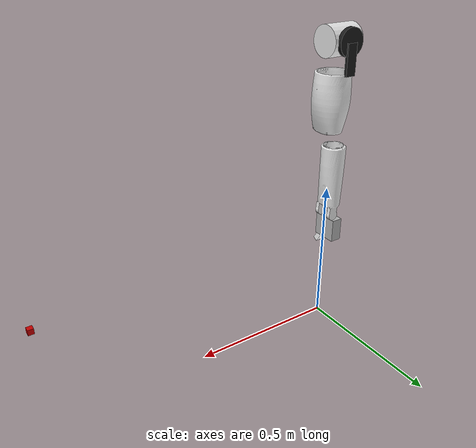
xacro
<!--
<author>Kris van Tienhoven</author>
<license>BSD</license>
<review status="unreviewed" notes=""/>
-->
<?xml version="1.0" ?>
<!-- |    This document was autogenerated by xacro from pera.xacro                     | -->
<!-- |    EDITING THIS FILE BY HAND IS NOT RECOMMENDED                                 | -->
<robot name="PERA" xmlns:xacro="http://ros.org/wiki/xacro">
 <xacro:include filename="$(find robot2_description)/urdf/robot2_2.xacro" />
  <!-- Included URDF Files -->
  <!-- this files contains the definitions for all colors and textures for rviz -->
  <material name="Blue">
    <color rgba="0.0 0.0 0.8 1.0"/>
  </material>
  <material name="Green">
    <color rgba="0.0 0.8 0.0 1.0"/>
  </material>
  <material name="Grey">
    <color rgba="0.7 0.7 0.7 1.0"/>
  </material>
  <material name="Grey2">
    <color rgba="0.9 0.9 0.9 1.0"/>
  </material>
  <material name="Red">
    <color rgba="0.8 0.0 0.0 1.0"/>
  </material>
  <material name="White">
    <color rgba="1.0 1.0 1.0 1.0"/>
  </material>
  <material name="Black">
    <color rgba="0.1 0.1 0.1 1.0"/>
  </material>
  <material name="LightGrey">
    <color rgba="0.6 0.6 0.6 1.0"/>
  </material>
  <material name="amigo_description/bottomcovers">
    <texture filename="package://robot2_description/meshes/media/materials/textures/bottomcovers/finalreduced.jpg"/>
  </material>
  <material name="amigo_description/white">
    <texture filename="package://robot2_description/meshes/media/materials/textures/white/white.jpg"/>
  </material>
  <material name="amigo_description/logo">
    <texture filename="package://robot2_description/meshes/media/materials/textures/logo/tue.jpg"/>
  </material>
  <material name="amigo_description/aluminium">
    <texture filename="package://robot2_description/meshes/media/materials/textures/aluminium/aluminium_0001_c.jpg"/>
  </material>
  <material name="amigo_description/orange">
    <texture filename="package://robot2_description/meshes/media/materials/textures/orange/orange.jpg"/>
  </material>
  <!-- *************** LINK Definitions *****************-->
  <!--use this type of link for standard shapes (bos, cylinder, sphere) with standard color -->
  <!-- use this type of link if you want the standard shapes with a texture -->
  <!--use this type of link for shapes that need to be collision free and thereby also invisible -->
  <!--use this type of link if you want to load a mesh with a standard color -->
  <!-- use this type of link if you want to load a mesh with a texture -->
  <!-- use this type of link if you want a mesh with texture and a different bouding box (then the box around the mesh itself) -->
  <!-- *************** JOINT Definition *****************-->
  <!-- ros_control plugin -->
  <gazebo>

   <plugin name="gazebo_ros_control" filename="libgazebo_ros_control.so">
      <robotNamespace>/PERA</robotNamespace>
      <robotSimType>gazebo_ros_control/DefaultRobotHWSim</robotSimType>
   </plugin>
  </gazebo>

  <!-- Used for fixing robot to Gazebo 'base_link' -->
  <link name="world"/>
  <!-- the arm -->
  <!--the end of the clavicle, yaw rotation-->
  <link name="shoulder_mount">
    <inertial>
      <origin rpy="0 0 0" xyz="0.0 0.0 0.0"/>
      <mass value="0.15"/>
      <inertia ixx="0.01" ixy="0" ixz="0" iyy="0.01" iyz="0" izz="0.01"/>
    </inertial>
    <visual>
      <origin rpy="0 0 0 " xyz="0.0 0.0 0.0"/>
      <geometry>
        <cylinder length="0.11" radius="0.05"/>
      </geometry>
      <material name="Grey2">
     </material>
    </visual>
    <collision>
      <origin rpy="0 0 0 " xyz="0.0 0.0 0.0"/>
      <geometry>
        <cylinder length="0.11" radius="0.05"/>
      </geometry>
    </collision>
  </link>
  <gazebo reference="shoulder_mount">
    <material>Grey2</material>
    <turnGravityOff>false</turnGravityOff>
  </gazebo>
  <!--the cylinder on the end of the clavicle, pitch rotation-->
  <link name="shoulder_link1">
    <inertial>
      <origin rpy="0 0 0" xyz="0.0 0.0 0.0"/>
      <mass value="0.25"/>
      <inertia ixx="6.0" ixy="0" ixz="0" iyy="0.01" iyz="0" izz="0.01"/>
    </inertial>
    <visual>
      <origin rpy="0 0 0 " xyz="0.0 0.0 0.0525"/>
      <geometry>
        <cylinder length="0.015" radius="0.045"/>
      </geometry>
      <material name="Black">
     </material>
    </visual>
    <collision>
      <origin rpy="0 0 0 " xyz="0.0 0.0 0.0525"/>
      <geometry>
        <cylinder length="0.015" radius="0.045"/>
      </geometry>
    </collision>
  </link>
  <gazebo reference="shoulder_link1">
    <material>Black</material>
    <turnGravityOff>false</turnGravityOff>
  </gazebo>
  <!--the box that connects the clavicle to the upper arm, roll rotation-->
  <link name="shoulder_link2">
    <inertial>
      <origin rpy="0 0 0" xyz="0.0 0.0 0.0"/>
      <mass value="0.15"/>
      <inertia ixx="0.01" ixy="0" ixz="0" iyy="4.04" iyz="0" izz="0.001"/>
    </inertial>
    <visual>
      <origin rpy="0 0 0" xyz="0.0 -0.06 -0.05"/>
      <geometry>
        <box size="0.035 0.01 0.1"/>
      </geometry>
      <material name="Black">
     </material>
    </visual>
    <collision>
      <origin rpy="0 0 0" xyz="0.0 -0.06 -0.05"/>
      <geometry>
        <box size="0.035 0.01 0.1"/>
      </geometry>
    </collision>
  </link>
  <gazebo reference="shoulder_link2">
    <material>Black</material>
    <turnGravityOff>false</turnGravityOff>
  </gazebo>
  <!--the upper arm-->
  <link name="upper_arm">
    <inertial>
      <origin rpy="0 0 0" xyz="0.0 -0.2 0.0"/>
      <mass value="2.95"/>
      <inertia ixx="0.027" ixy="0" ixz="0" iyy="0.45993" iyz="0" izz="0.004"/>
    </inertial>
    <visual>
      <origin rpy="0 0 3.1415" xyz="-0.00959 -0.19131 -0.00001"/>
      <geometry>
        <mesh filename="package://robot2_description/meshes/media/meshes/upperarmtextured.dae" scale="0.0004 0.0004 0.0004"/>
      </geometry>
      <material name="amigo_description/white"/>
    </visual>
    <collision>
      <origin rpy="0 0 3.1415" xyz="-0.00959 -0.19131 -0.00001"/>
      <geometry>
        <mesh filename="package://robot2_description/meshes/media/meshes/upperarmtextured.dae" scale="0.0004 0.0004 0.0004"/>
      </geometry>
    </collision>
  </link>
  <gazebo reference="upper_arm">
    <material>amigo_description/white</material>
    <turnGravityOff>false</turnGravityOff>
  </gazebo>
  <!--the elbow
note: not visible, see arm_extra_visuals for the elbow visuals -->
  <link name="elbow_link4">
    <inertial>
      <origin rpy="0 0 0" xyz="0.0 0.0 0.0"/>
      <mass value="0.1"/>
      <inertia ixx="0.001" ixy="0" ixz="0" iyy="0.6" iyz="0" izz="0.001"/>
    </inertial>
    <visual>
      <origin rpy="0 0 0" xyz="0.0 0.0 0.0"/>
      <geometry>
        <cylinder length="0.0" radius="0.0"/>
      </geometry>
      <material name="Grey">
     </material>
    </visual>
    <collision>
      <origin rpy="0 0 0" xyz="0.0 0.0 0.0"/>
      <geometry>
        <cylinder length="0.0" radius="0.0"/>
      </geometry>
    </collision>
  </link>
  <gazebo reference="elbow_link4">
    <material>Grey</material>
    <turnGravityOff>false</turnGravityOff>
  </gazebo>
  <!--the forearm-->
  <link name="fore_arm">
    <inertial>
      <origin rpy="0.0 0 0" xyz="0.0 -0.14 0.0"/>
      <mass value="0.85"/>
      <inertia ixx="0.001" ixy="0" ixz="0" iyy="0.5" iyz="0" izz="0.001"/>
    </inertial>
    <visual>
      <origin rpy="0 -1.5708 0" xyz="0.00425 -0.14868 0.00547"/>
      <geometry>
        <mesh filename="package://robot2_description/meshes/media/meshes/forearmtextured.dae" scale="0.0004 0.0004 0.0004"/>
      </geometry>
      <material name="amigo_description/white"/>
    </visual>
    <collision>
      <origin rpy="0 -1.5708 0" xyz="0.00425 -0.14868 0.00547"/>
      <geometry>
        <mesh filename="package://robot2_description/meshes/media/meshes/forearmtextured.dae" scale="0.0004 0.0004 0.0004"/>
      </geometry>
    </collision>
  </link>
  <gazebo reference="fore_arm">
    <material>amigo_description/white</material>
    <turnGravityOff>false</turnGravityOff>
  </gazebo>
  <!--the wrist
note: not visible, see arm_extra_visuals for the wrist visuals -->
  <link name="wrist_link6">
    <inertial>
      <origin rpy="0 0 0" xyz="0.0 0.0 0.0"/>
      <mass value="0.01"/>
      <inertia ixx="0.001" ixy="0" ixz="0" iyy="0.03322" iyz="0" izz="0.001"/>
    </inertial>
    <visual>
      <origin rpy="1.5708 0 0" xyz="0.0 0.0 0.0"/>
      <geometry>
        <cylinder length="0.0" radius="0.0"/>
      </geometry>
      <material name="Black">
     </material>
    </visual>
    <collision>
      <origin rpy="1.5708 0 0" xyz="0.0 0.0 0.0"/>
      <geometry>
        <cylinder length="0.0" radius="0.0"/>
      </geometry>
    </collision>
  </link>
  <gazebo reference="wrist_link6">
    <material>Black</material>
    <turnGravityOff>false</turnGravityOff>
  </gazebo>
  <!--the hand -->
  <link name="hand">
    <inertial>
      <origin rpy="0 0 0" xyz="0.048 0.0 0.0"/>
      <mass value="0.2"/>
      <inertia ixx="0.01" ixy="0" ixz="0" iyy="0.01" iyz="0" izz="0.0622"/>
    </inertial>
    <visual>
      <origin rpy="0 0 0" xyz="0.048 0.0 0.0"/>
      <geometry>
        <box size="0.080 0.085 0.038"/>
      </geometry>
      <material name="Grey">
     </material>
    </visual>
    <collision>
      <origin rpy="0 0 0" xyz="0.048 0.0 0.0"/>
      <geometry>
        <box size="0.080 0.085 0.038"/>
      </geometry>
    </collision>
  </link>
  <gazebo reference="hand">
    <material>Grey</material>
    <turnGravityOff>false</turnGravityOff>
  </gazebo>
  <!--the right finger  hier de link naar de gripper van maken? -->
  <link name="gripper">
    <inertial>
      <origin rpy="0 0 0" xyz="0.0 0.0 -0.03"/>
      <mass value="0.01"/>
      <inertia ixx="0.01" ixy="0" ixz="0" iyy="0.01" iyz="0" izz="0.01"/>
    </inertial>
    <visual>
      <origin rpy="0 0 0" xyz="0.0 0.0 -0.03"/>
      <geometry>
        <box size="0.018 0.018 0.06"/>
      </geometry>
      <material name="White">
     </material>
    </visual>
    <collision>
      <origin rpy="0 0 0" xyz="0.0 0.0 -0.03"/>
      <geometry>
        <box size="0.018 0.018 0.06"/>
      </geometry>
    </collision>
  </link>
  <gazebo reference="gripper">
    <material>White</material>
    <turnGravityOff>false</turnGravityOff>
  </gazebo>
  <gazebo reference="gripper">
    <mu1 value="100.0"/>
    <mu2 value="100.0"/>
  </gazebo>
  <!--the joints start here-->
  <joint name="shoulder_mount_joint" type="fixed">
    <parent link="world"/>
    <child link="shoulder_mount"/>
    <origin rpy="0 -1.57 0" xyz="0 0 1.0"/>
  </joint>
  <joint name="arm_joint1" type="revolute">
    <parent link="shoulder_mount"/>
    <child link="shoulder_link1"/>
    <origin rpy="-1.5708 -1.5708 0" xyz="0 0 0"/>
    <axis xyz="+1 0 0"/>
    <dynamics damping="4.0" friction="4.87"/>
    <limit effort="13.4" lower="-1.57" upper="0.0" velocity="1.0"/>
  </joint>
  <joint name="shoulder_pitch_joint" type="revolute">
    <parent link="shoulder_link1"/>
    <child link="shoulder_link2"/>
    <origin rpy="-1.5708  0 0" xyz="0.0 0.0 0.0"/>
    <axis xyz="0 -1 0"/>
    <dynamics damping="4.0" friction="6.06"/>
    <limit effort="13.4" lower="-1.57" upper="1.57" velocity="1.0"/>
  </joint>
  <joint name="shoulder_roll_joint" type="revolute">
    <parent link="shoulder_link2"/>
    <child link="upper_arm"/>
    <origin rpy="1.5708 0 0.0" xyz="0.0 0.0 0.0"/>
    <axis xyz="0 1.0 0"/>
    <dynamics damping="3.8" friction="2.216"/>
    <limit effort="9.8" lower="-1.57" upper="1.57" velocity="1.0"/>
  </joint>
  <joint name="arm_joint2" type="revolute">
    <parent link="upper_arm"/>
    <child link="elbow_link4"/>
    <origin rpy="-1.5708 0 0" xyz="0.01 -0.32 0.0"/>
    <axis xyz="0 -1 0"/>
    <dynamics damping="3" friction="1.18"/>
    <limit effort="4.5" lower="0.0" upper="2.23" velocity="1.0"/>
  </joint>
  <joint name="arm_joint3" type="revolute">
    <parent link="elbow_link4"/>
    <child link="fore_arm"/>
    <origin rpy="1.5708 0 0" xyz="0.0 0.0 0.0"/>
    <axis xyz="0 1.0 0"/>
    <dynamics damping="3.5" friction="1.35"/>
    <limit effort="4.5" lower="-1.83" upper="1.83" velocity="1.0"/>
  </joint>
  <joint name="wrist_pitch_joint" type="revolute">
    <parent link="fore_arm"/>
    <child link="wrist_link6"/>
    <origin rpy="-1.5708 0 -1.5708" xyz="0.01 -0.28 0.0"/>
    <axis xyz="0 -1 0"/>
    <dynamics damping="0.35" friction="0.63"/>
    <limit effort="1" lower="-0.95" upper="0.95" velocity="1.0"/>
  </joint>
  <joint name="wrist_yaw_joint" type="revolute">
    <parent link="wrist_link6"/>
    <child link="hand"/>
    <origin rpy="0 0 0" xyz="0.0 0.0 0.0"/>
    <axis xyz="0 0 1.01"/>
    <dynamics damping="0.3" friction="0.68"/>
    <limit effort="1" lower="-0.61" upper="0.61" velocity="1.0"/>
  </joint>
  <!-- de gripper joint van maken -->
  <joint name="gripper_joint" type="revolute">
    <parent link="hand"/>
    <child link="gripper"/>
    <origin rpy="0 -1.57 0" xyz=" 0.075 0.02 0"/>
    <axis xyz="1 0 0"/>
    <dynamics damping="0.5" friction="1.0"/>
    <limit effort="3" lower="0.2" upper="1" velocity="1.0"/>
  </joint>
  <!-- Camera -->
  <joint name="camera_joint" type="fixed">
    <origin rpy="0 0 3.14159" xyz="1 -0.2 0.2"/>
    <parent link="world"/>
    <child link="camera_link"/>
  </joint>
  <link name="camera_link">
    <collision>
      <origin rpy="0 0 0" xyz="0 0 0"/>
      <geometry>
        <box size="0.1 0.1 0.1"/>
      </geometry>
    </collision>
    <visual>
      <origin rpy="0 0 0" xyz="0 0 0"/>
      <geometry>
        <box size="0.02 0.02 0.02"/>
      </geometry>
      <material name="Red"/>
    </visual>
    <inertial>
      <mass value="1e-5"/>
      <origin rpy="0 0 0" xyz="0 0 0"/>
      <inertia ixx="1e-6" ixy="0" ixz="0" iyy="1e-6" iyz="0" izz="1e-6"/>
    </inertial>
  </link>

	<xacro:transmission joint_name="arm_joint1">
		</xacro:transmission>
	<xacro:transmission joint_name="arm_joint2">
		</xacro:transmission>
	<xacro:transmission joint_name="arm_joint3">
		</xacro:transmission>

</robot>
